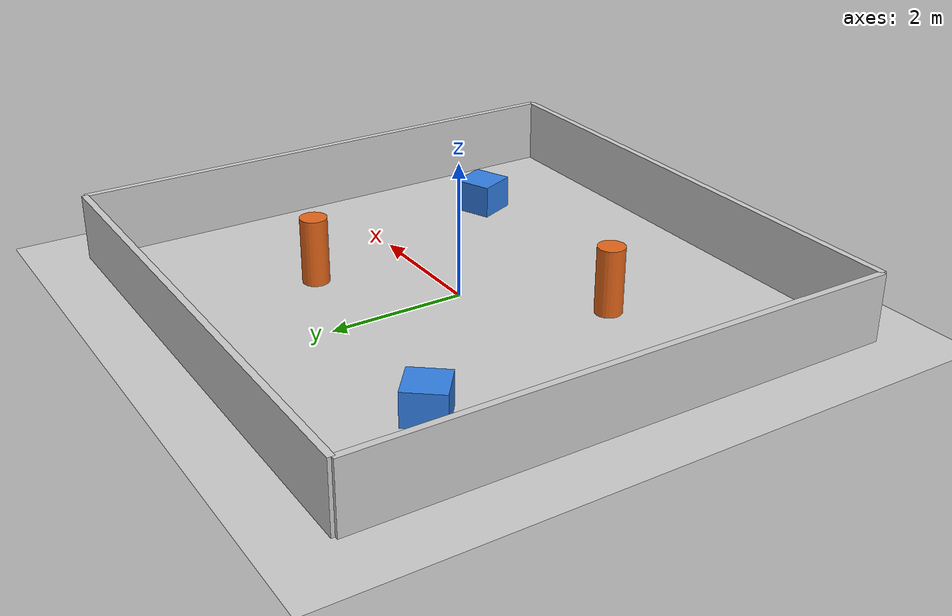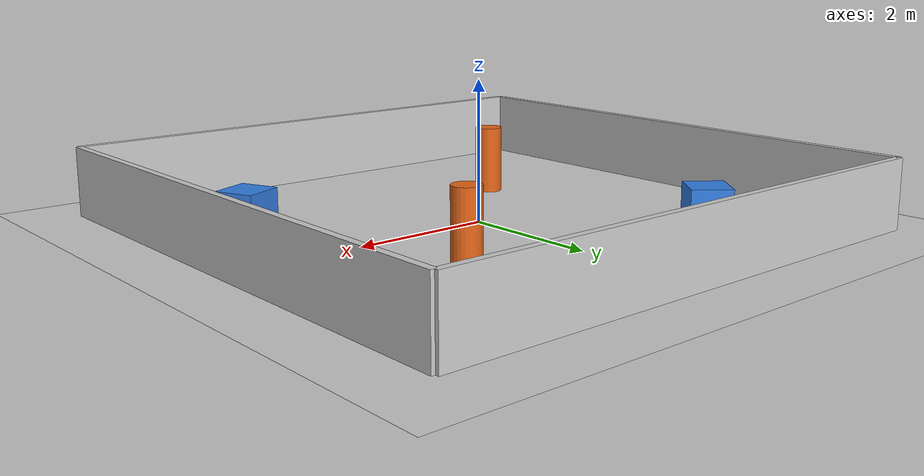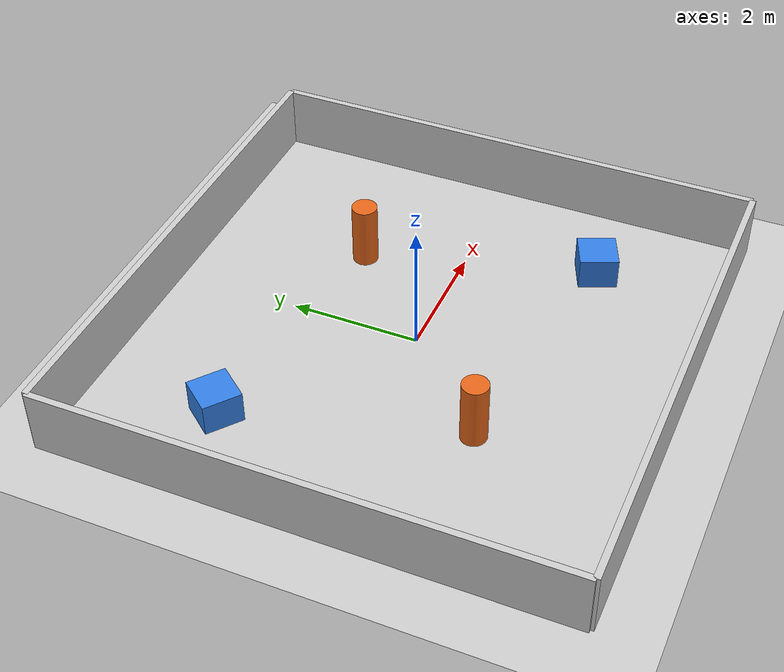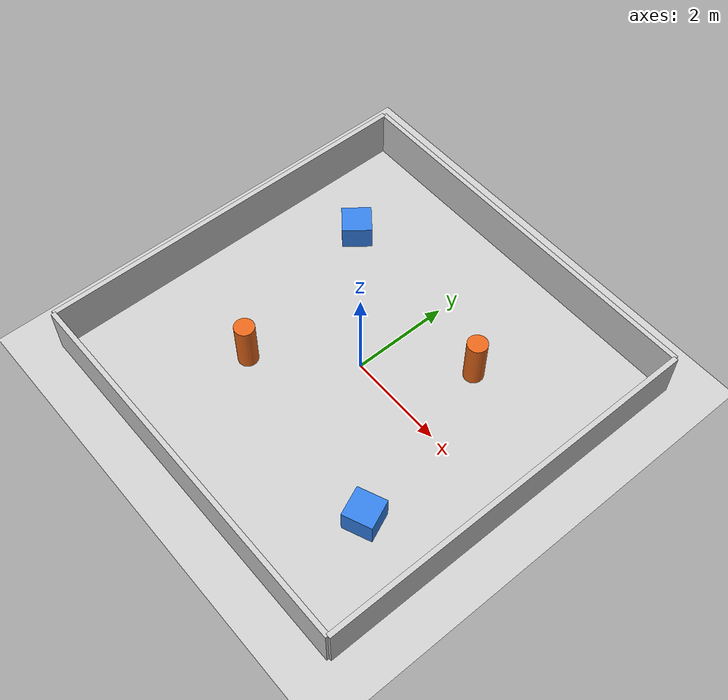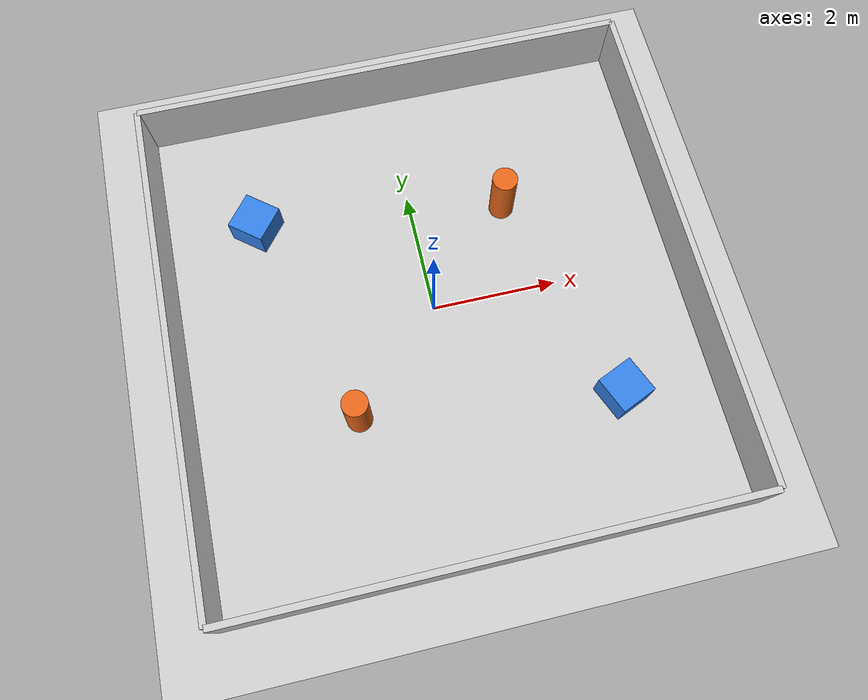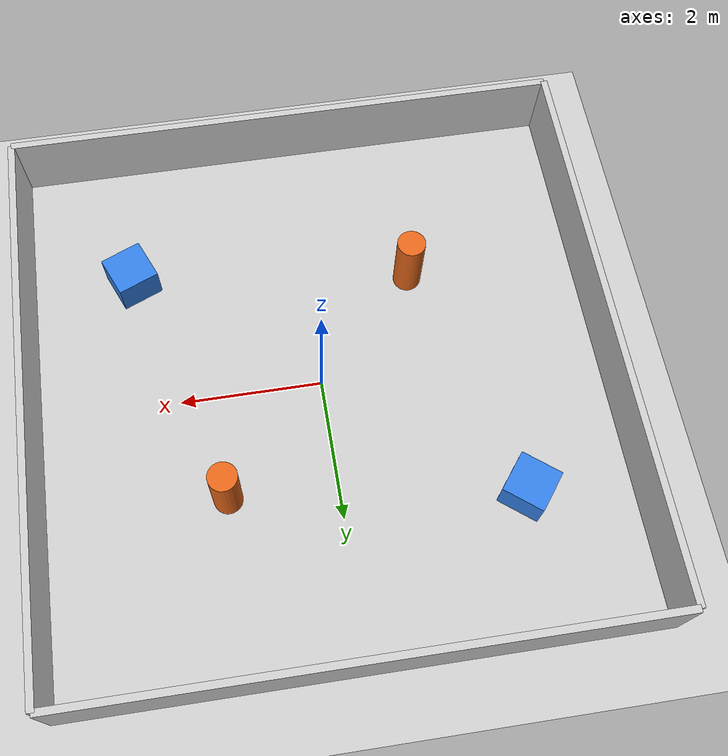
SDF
<?xml version="1.0"?>
<!-- 8x8 m 方形场地：四周围墙 + 两根立柱 + 两个箱体，给 2D SLAM 足够特征 -->
<sdf version="1.6">
  <world name="sim_arena">
    <include><uri>model://ground_plane</uri></include>
    <include><uri>model://sun</uri></include>

    <model name="wall_north">
      <static>true</static>
      <pose>0 4 0.5 0 0 0</pose>
      <link name="link">
        <collision name="col"><geometry><box><size>8 0.1 1</size></box></geometry></collision>
        <visual name="vis"><geometry><box><size>8 0.1 1</size></box></geometry>
          <material><ambient>0.8 0.8 0.8 1</ambient></material></visual>
      </link>
    </model>
    <model name="wall_south">
      <static>true</static>
      <pose>0 -4 0.5 0 0 0</pose>
      <link name="link">
        <collision name="col"><geometry><box><size>8 0.1 1</size></box></geometry></collision>
        <visual name="vis"><geometry><box><size>8 0.1 1</size></box></geometry>
          <material><ambient>0.8 0.8 0.8 1</ambient></material></visual>
      </link>
    </model>
    <model name="wall_east">
      <static>true</static>
      <pose>4 0 0.5 0 0 0</pose>
      <link name="link">
        <collision name="col"><geometry><box><size>0.1 8 1</size></box></geometry></collision>
        <visual name="vis"><geometry><box><size>0.1 8 1</size></box></geometry>
          <material><ambient>0.8 0.8 0.8 1</ambient></material></visual>
      </link>
    </model>
    <model name="wall_west">
      <static>true</static>
      <pose>-4 0 0.5 0 0 0</pose>
      <link name="link">
        <collision name="col"><geometry><box><size>0.1 8 1</size></box></geometry></collision>
        <visual name="vis"><geometry><box><size>0.1 8 1</size></box></geometry>
          <material><ambient>0.8 0.8 0.8 1</ambient></material></visual>
      </link>
    </model>

    <model name="pillar_1">
      <static>true</static>
      <pose>1.5 1.5 0.5 0 0 0</pose>
      <link name="link">
        <collision name="col"><geometry><cylinder><radius>0.2</radius><length>1</length></cylinder></geometry></collision>
        <visual name="vis"><geometry><cylinder><radius>0.2</radius><length>1</length></cylinder></geometry>
          <material><ambient>0.9 0.4 0.1 1</ambient></material></visual>
      </link>
    </model>
    <model name="pillar_2">
      <static>true</static>
      <pose>-1.5 -1.5 0.5 0 0 0</pose>
      <link name="link">
        <collision name="col"><geometry><cylinder><radius>0.2</radius><length>1</length></cylinder></geometry></collision>
        <visual name="vis"><geometry><cylinder><radius>0.2</radius><length>1</length></cylinder></geometry>
          <material><ambient>0.9 0.4 0.1 1</ambient></material></visual>
      </link>
    </model>

    <model name="box_1">
      <static>true</static>
      <pose>2.5 -2 0.25 0 0 0.4</pose>
      <link name="link">
        <collision name="col"><geometry><box><size>0.6 0.6 0.5</size></box></geometry></collision>
        <visual name="vis"><geometry><box><size>0.6 0.6 0.5</size></box></geometry>
          <material><ambient>0.2 0.5 0.9 1</ambient></material></visual>
      </link>
    </model>
    <model name="box_2">
      <static>true</static>
      <pose>-2.5 2 0.25 0 0 0.9</pose>
      <link name="link">
        <collision name="col"><geometry><box><size>0.6 0.6 0.5</size></box></geometry></collision>
        <visual name="vis"><geometry><box><size>0.6 0.6 0.5</size></box></geometry>
          <material><ambient>0.2 0.5 0.9 1</ambient></material></visual>
      </link>
    </model>
  </world>
</sdf>
